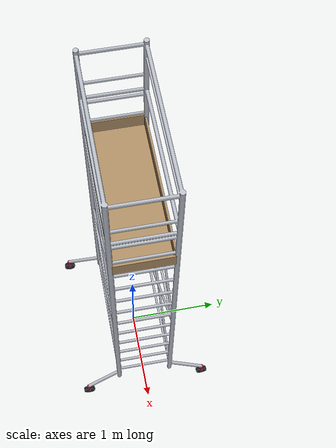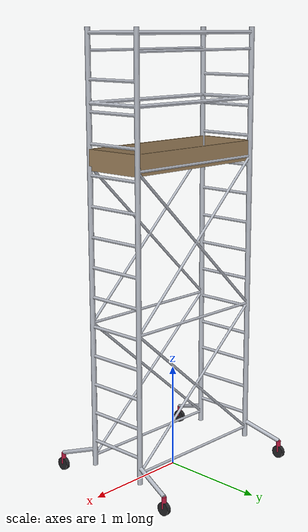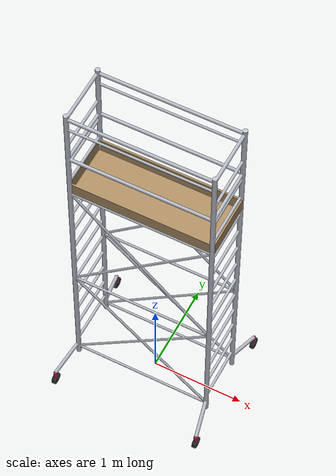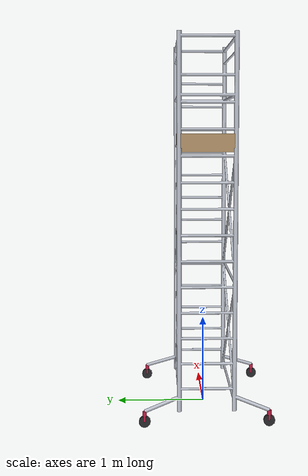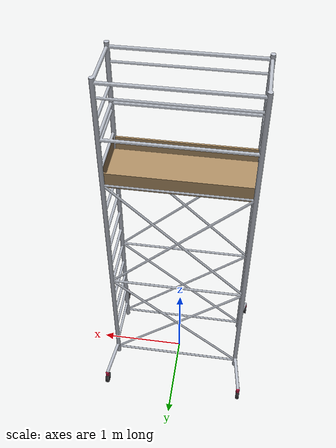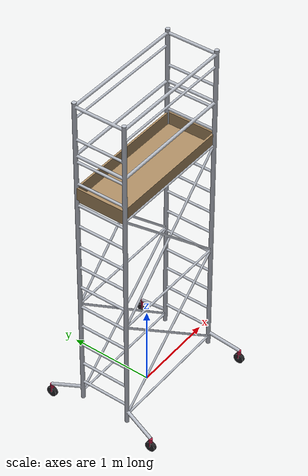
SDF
<?xml version="1.0" ?>
<sdf version="1.7">
  <model name="krause_corda_4200">
    <static>true</static>
    <link name="base_link">
      <inertial>
        <pose>0 0 2.36496 0 0 0</pose>
        <mass>48</mass>
        <inertia>
          <ixx>71.7557</ixx><ixy>0</ixy><ixz>0</ixz>
          <iyy>86.8674</iyy><iyz>0</iyz><izz>23.125</izz>
        </inertia>
      </inertial>
      <visual name="visual_dark">
        <geometry><mesh><uri>meshes/krause_corda_4200_dark.dae</uri></mesh></geometry>
        <material>
          <ambient>0.0600 0.0600 0.0700 1.0000</ambient>
          <diffuse>0.1500 0.1500 0.1600 1.0000</diffuse>
          <specular>0.1000 0.1000 0.1000 1.0000</specular>
        </material>
      </visual>
      <visual name="visual_red">
        <geometry><mesh><uri>meshes/krause_corda_4200_red.dae</uri></mesh></geometry>
        <material>
          <ambient>0.3500 0.0500 0.1200 1.0000</ambient>
          <diffuse>0.7200 0.1000 0.2500 1.0000</diffuse>
          <specular>0.2000 0.2000 0.2000 1.0000</specular>
        </material>
      </visual>
      <visual name="visual_alu">
        <geometry><mesh><uri>meshes/krause_corda_4200_alu.dae</uri></mesh></geometry>
        <material>
          <ambient>0.5500 0.5700 0.6000 1.0000</ambient>
          <diffuse>0.7200 0.7400 0.7800 1.0000</diffuse>
          <specular>0.4500 0.4500 0.4500 1.0000</specular>
        </material>
      </visual>
      <visual name="visual_wood">
        <geometry><mesh><uri>meshes/krause_corda_4200_wood.dae</uri></mesh></geometry>
        <material>
          <ambient>0.4200 0.3400 0.2400 1.0000</ambient>
          <diffuse>0.6600 0.5400 0.3800 1.0000</diffuse>
          <specular>0.0500 0.0500 0.0500 1.0000</specular>
        </material>
      </visual>
      <collision name="c_00">
        <pose>-0.75 -0.3 2.1725 0 0 0</pose>
        <geometry><box><size>0.06 0.06 4.055</size></box></geometry>
      </collision>
      <collision name="c_01">
        <pose>-0.75 0.3 2.1725 0 0 0</pose>
        <geometry><box><size>0.06 0.06 4.055</size></box></geometry>
      </collision>
      <collision name="c_02">
        <pose>0.75 -0.3 2.1725 0 0 0</pose>
        <geometry><box><size>0.06 0.06 4.055</size></box></geometry>
      </collision>
      <collision name="c_03">
        <pose>0.75 0.3 2.1725 0 0 0</pose>
        <geometry><box><size>0.06 0.06 4.055</size></box></geometry>
      </collision>
      <collision name="c_04">
        <pose>0 0 2.9775 0 0 0</pose>
        <geometry><box><size>1.5 0.56 0.045</size></box></geometry>
      </collision>
      <collision name="c_05">
        <pose>0 -0.3 4.15 0 0 0</pose>
        <geometry><box><size>1.5 0.04 0.04</size></box></geometry>
      </collision>
      <collision name="c_06">
        <pose>0 0.3 4.15 0 0 0</pose>
        <geometry><box><size>1.5 0.04 0.04</size></box></geometry>
      </collision>
      <collision name="c_07">
        <pose>0 0 0.0625 0 0 0</pose>
        <geometry><box><size>1.65 1.35 0.125</size></box></geometry>
      </collision>
    </link>
  </model>
</sdf>
